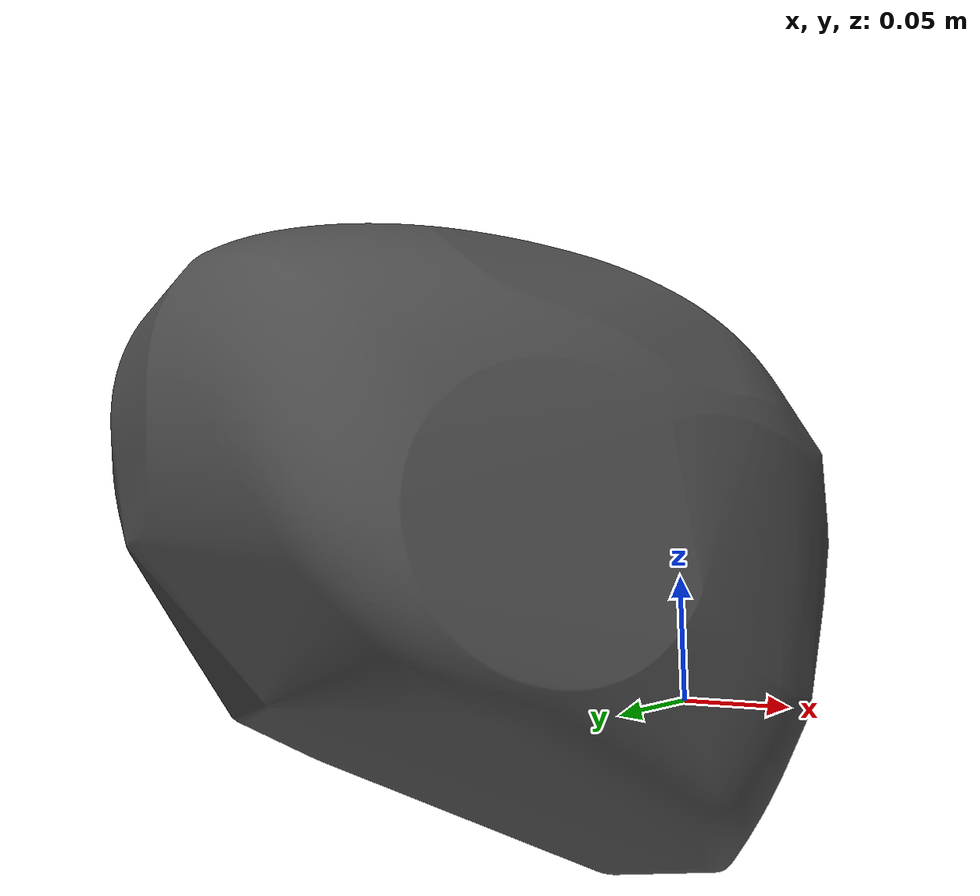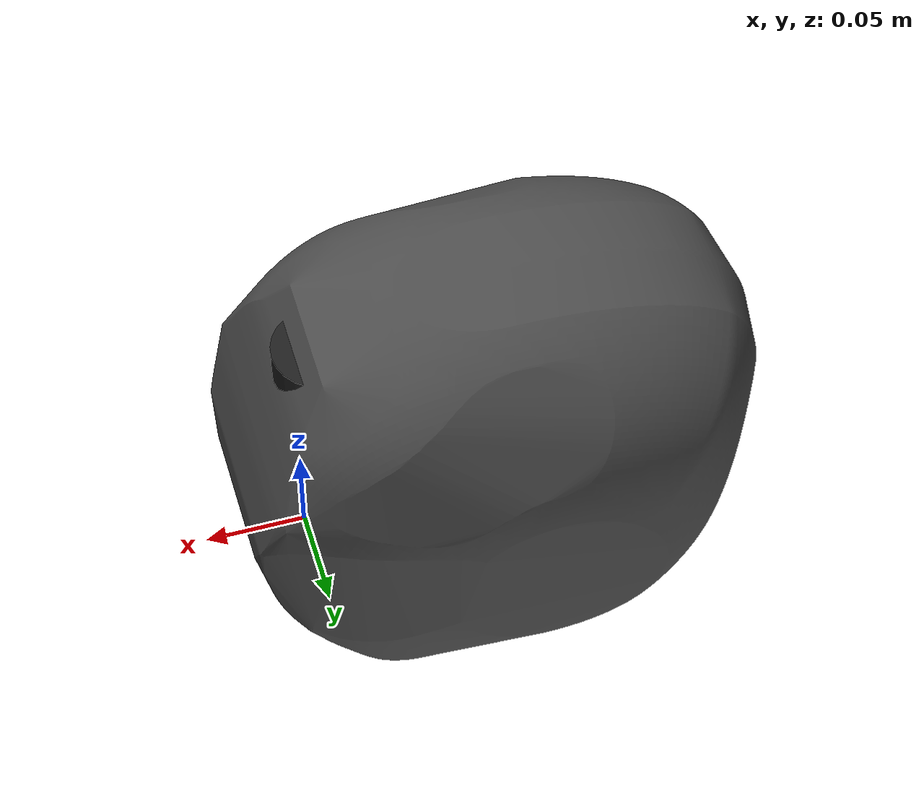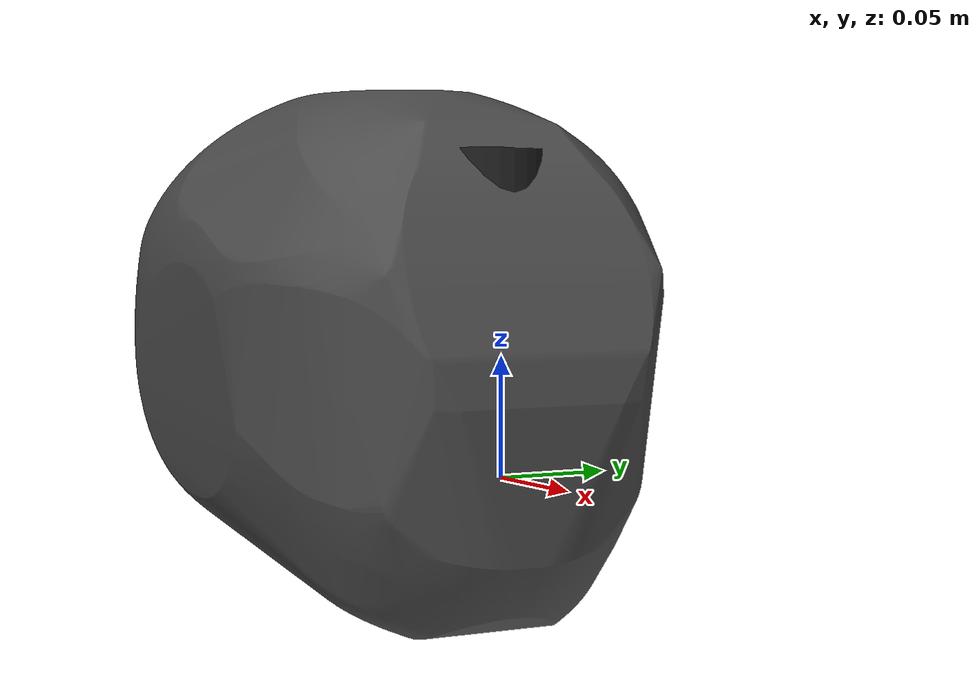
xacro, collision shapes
<?xml version="1.0"?>
<robot xmlns:xacro="http://ros.org/wiki/xacro" name="multisense_sl">

<!--
       Based on multisense_sl_v4.urdf in multisense_sl_description (DRCSIM)
-->

  <!-- Head Link Simple Collision Meshes -->
  <link name="multisense/head">
    <inertial>
      <origin xyz="-0.075493 3.3383E-05 0.02774" rpy="0 0 0" />
      <mass value="1.41984" />
      <inertia iyy="0.0041178" ixy="-1.5797E-06" iyz="-6.8415E-07" ixx="0.0039688" ixz="-0.00089293" izz="0.0035243" />
    </inertial>
    <visual>
            <origin xyz="0 0 0" rpy="0 0 0" />
            <geometry>
                <mesh filename="package://bigman_urdf/meshes/Head.STL" scale="0.001 0.001 0.001"/>
            </geometry>
            <material name="dark_grey"/>
        </visual>
  <collision>
    <origin xyz="0 0 0" rpy="0 0 0" />
    <geometry>
      <mesh filename="package://bigman_urdf/meshes/simple/Head.STL" scale="0.001 0.001 0.001"/>
    </geometry>
  </collision>
  </link>

  <link name="multisense/hokuyo_link">
    <inertial>
      <origin xyz="0.032428 0.0004084 -0.0041835" rpy="0 0 0" />
      <mass value="0.057654" />
      <inertia iyy="4.2412E-05" ixy="4.9927E-08" iyz="-9.8165E-09" ixx="3.7174E-05" ixz="1.1015E-05" izz="4.167E-05" />
    </inertial>
    <visual>
      <origin xyz="0 0 0" rpy="1.5707963267949 0 1.5707963267949" />
      <geometry>
        <mesh filename="package://bigman_urdf/meshes/hokuyo_link.STL"/>
      </geometry>
      <material name="black"/>
    </visual>
  <collision>
    <origin xyz="0.01885 0 -0.02119" rpy="0 0 0" />
    <geometry>
      <box size="0.08 0.06 0.04238"/>
    </geometry>
  </collision>
  <collision>
    <origin xyz="0.03 0 0.0235" rpy="0 0 0" />
    <geometry>
      <cylinder radius="0.024425" length="0.047"/>
    </geometry>
  </collision>
  </link>

  <joint name="hokuyo_joint" type="fixed">
    <origin xyz="-0.0446 0 0.0880" rpy="0 0 0" />
    <parent link="multisense/head" />
    <child link="multisense/hokuyo_link" />
  </joint>

  <!-- Hokuyo Laser -->
  <joint name="head_hokuyo_joint" type="fixed">
    <axis xyz="0 1 0" />
    <origin xyz="0.03 0 0.015" rpy="0 0 0"/>
    <parent link="multisense/hokuyo_link"/>
    <child link="multisense/head_hokuyo_frame"/>
  </joint>

  <link name="multisense/head_hokuyo_frame"/>

  <!-- Stereo Camera -->
  <joint name="left_camera_frame_joint" type="fixed">
    <!-- optical frame collocated with tilting DOF -->
    <origin xyz="0.0 0.035 -0.002"/>
    <parent link="multisense/head"/>
    <child link="multisense/left_camera_frame"/>
  </joint>

  <link name="multisense/left_camera_frame"/>

  <joint name="left_camera_optical_frame_joint" type="fixed">
    <origin xyz="0 0 0" rpy="-1.5708 0.0 -1.5708" />
    <parent link="multisense/left_camera_frame" />
    <child link="multisense/left_camera_optical_frame"/>
  </joint>

  <link name="multisense/left_camera_optical_frame"/>

  <joint name="right_camera_frame_joint" type="fixed">
    <origin xyz="0.0 -0.035 -0.002"/>
    <parent link="multisense/head"/>
    <child link="multisense/right_camera_frame"/>
  </joint>

  <link name="multisense/right_camera_frame"/>

  <joint name="right_camera_optical_frame_joint" type="fixed">
    <origin xyz="0 0 0" rpy="-1.5708 0.0 -1.5708" />
    <parent link="multisense/right_camera_frame" />
    <child link="multisense/right_camera_optical_frame"/>
  </joint>

  <link name="multisense/right_camera_optical_frame"/>

  <joint name="center_top_led_frame_joint" type="fixed">
    <origin xyz="0.01125 0.0 0.0105"/>
    <parent link="multisense/head"/>
    <child link="multisense/center_top_led_frame"/>
  </joint>

  <link name="multisense/center_top_led_frame"/>

  <joint name="center_bottom_led_frame_joint" type="fixed">
    <origin xyz="0.01125 0.0 -0.0155"/>
    <parent link="multisense/head"/>
    <child link="multisense/center_bottom_led_frame"/>
  </joint>

  <link name="multisense/center_bottom_led_frame"/>

  <joint name="left_led_frame_joint" type="fixed">
    <origin xyz="-0.01443 0.07452 0.050346" rpy="0 0 0.6"/>
    <parent link="multisense/head"/>
    <child link="multisense/left_led_frame"/>
  </joint>

  <link name="multisense/left_led_frame"/>

  <joint name="right_led_frame_joint" type="fixed">
    <origin xyz="-0.01443 -0.07452 0.050346" rpy="0 0 -0.6"/>
    <parent link="multisense/head"/>
    <child link="multisense/right_led_frame"/>
  </joint>

  <link name="multisense/right_led_frame"/>

  <!-- imu link -->
  <link name="multisense/head_imu_link">
    <inertial>
      <mass value="1e-5" />
      <!-- collocate with parent link and remove mass from it -->
      <origin xyz="-0.122993 0.035033383 0.02774" rpy="0 0 0" />
      <inertia ixx="1e-6" ixy="0" ixz="0" iyy="1e-6" iyz="0" izz="1e-6" />
    </inertial>
    <visual>
      <origin rpy="0 0 0" xyz="0 0 0"/>
      <geometry>
        <box size="0.01 0.01 0.01"/>
      </geometry>
    </visual>
    <collision>
      <origin rpy="0 0 0" xyz="0 0 0"/>
      <geometry>
        <box size="0.01 0.01 0.01"/>
      </geometry>
    </collision>
  </link>

  <joint name="head_imu_joint" type="fixed">
    <parent link="multisense/head"/>
    <child link="multisense/head_imu_link"/>
    <!-- putting it at the same z-level as the stereo -->
    <origin xyz="-0.0475 0.035 0.0" rpy="0 0 0"/>
  </joint>

  <link name="gaze"/>

  <joint name="gaze_joint" type="fixed">
    <parent link="multisense/head"/>
    <child link="gaze"/>
    <origin xyz="0 0 0" rpy="0 0 0" />
  </joint>

</robot>
